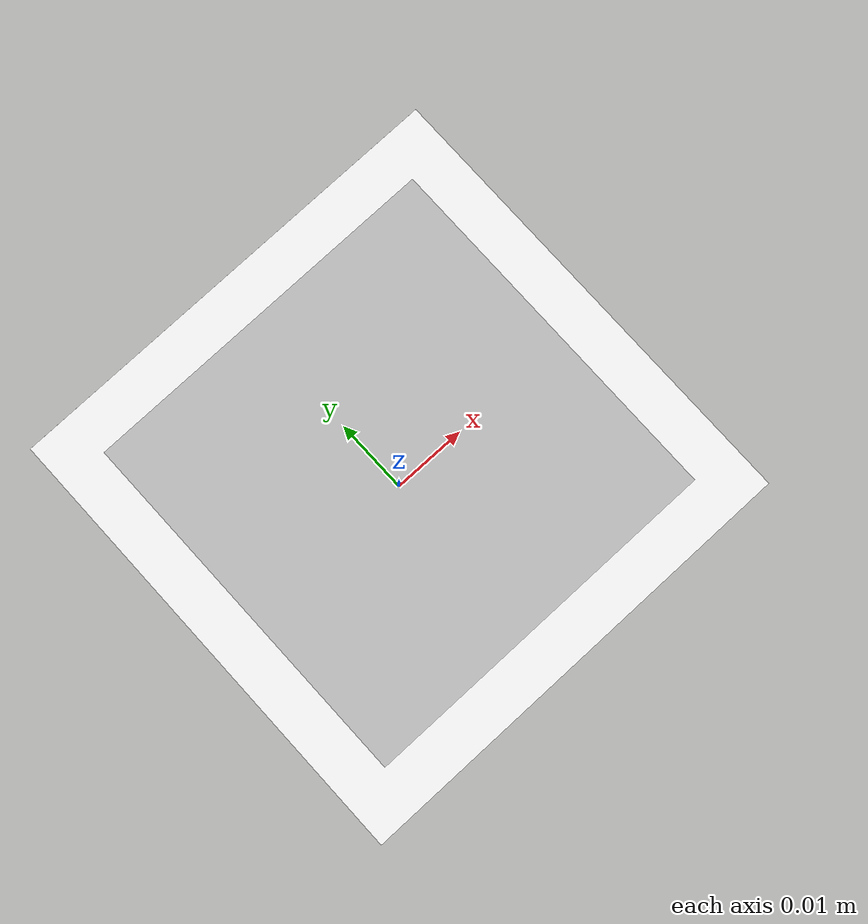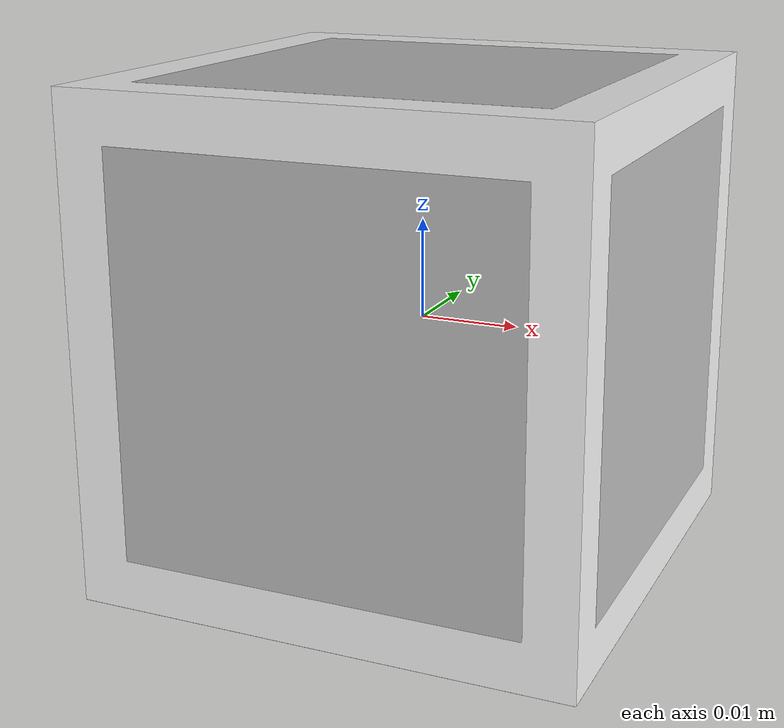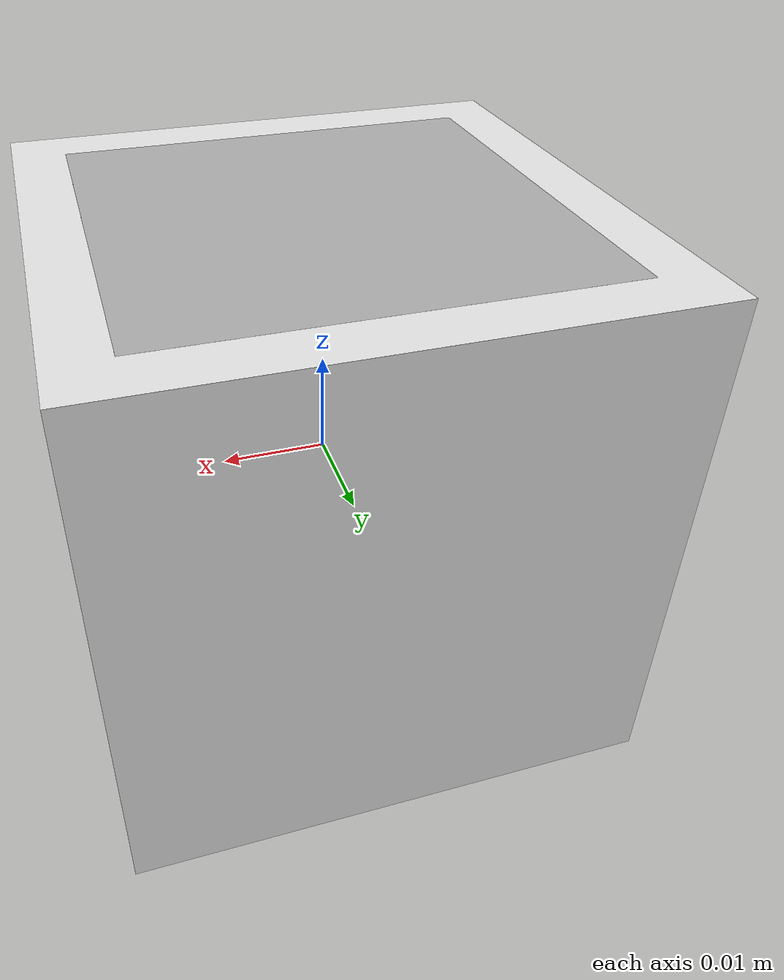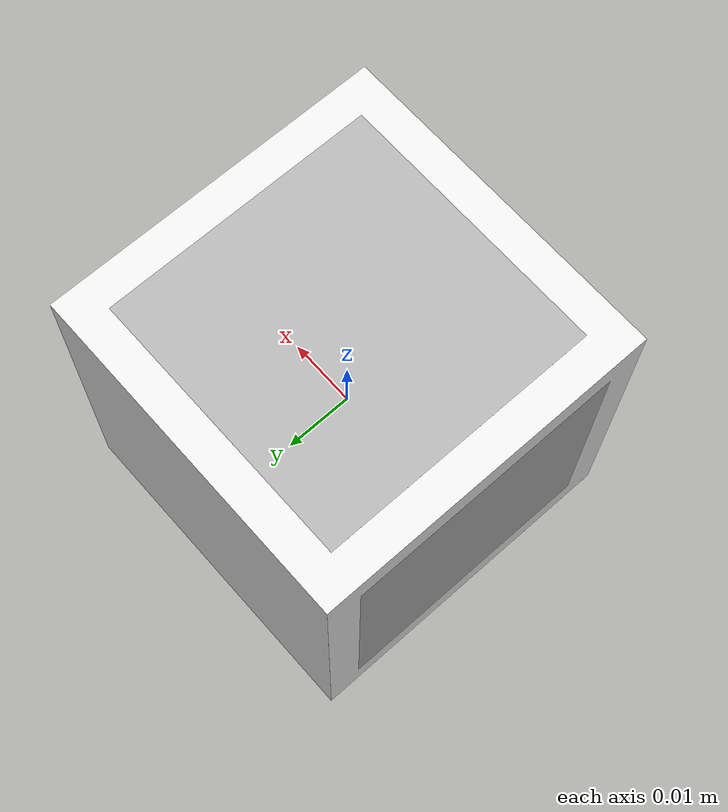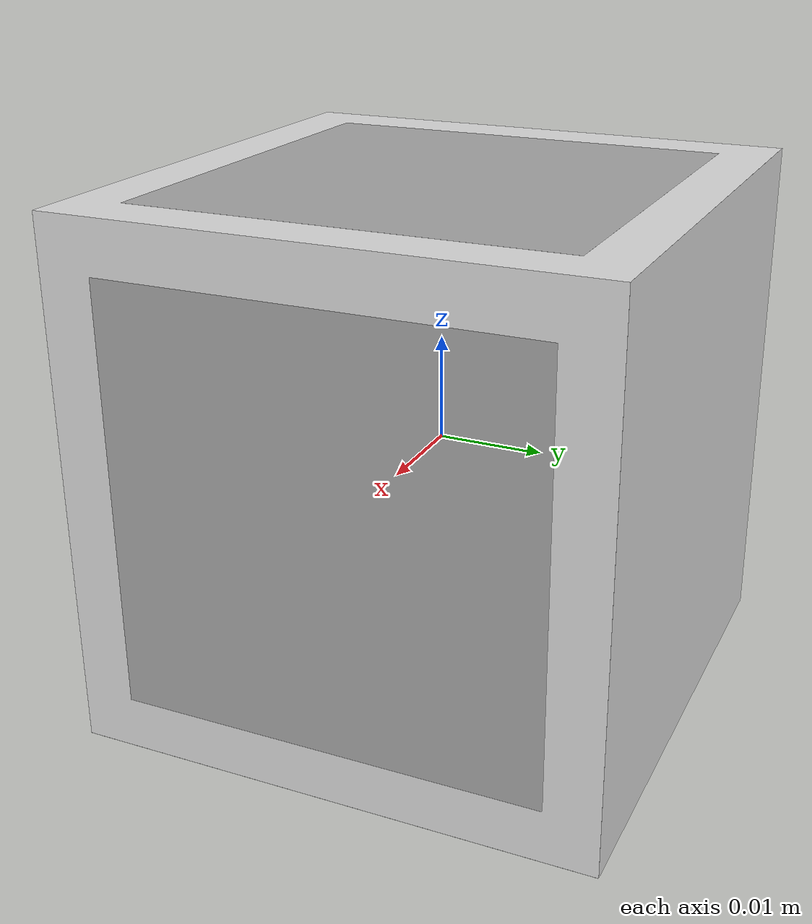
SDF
<?xml version="1.0"?>
<sdf version="1.6">
  <model name="cube4">
    <pose>0.0 0.0 0.0 0 0 0.0</pose>

    <link name="cube4_link">
      <inertial>
        <mass>0.05</mass>
        <inertia>
          <ixx>0.000020833</ixx>
          <ixy>0</ixy>
          <ixz>0</ixz>
          <iyy>0.000020833</iyy>
          <iyz>0</iyz>
          <izz>0.000020833</izz>
        </inertia>
      </inertial>

      <collision name="collision">
        <geometry>
          <box>
            <size>0.05 0.05 0.05</size>
          </box>
        </geometry>
      </collision>

      <visual name="body_visual">
        <geometry>
          <box>
            <size>0.05 0.05 0.05</size>
          </box>
        </geometry>
        <material>
          <ambient>0.95 0.95 0.95 1</ambient>
          <diffuse>0.95 0.95 0.95 1</diffuse>
        </material>
      </visual>

      <visual name="face_xp">
        <pose>0.02500001 0 0 0 0 0</pose>
        <geometry>
          <box>
            <size>0.000001 0.04 0.04</size>
          </box>
        </geometry>
        <material>
          <script>
            <uri>file:///volume/models/cube_model/materials/scripts</uri>
            <uri>file:///volume/models/cube_model/materials/textures</uri>
            <name>aruco_16</name>
          </script>
        </material>
      </visual>

      <visual name="face_xm">
        <pose>-0.02500001 0 0 0 0 0</pose>
        <geometry>
          <box>
            <size>0.00001 0.04 0.04</size>
          </box>
        </geometry>
        <material>
          <script>
            <uri>file:///volume/models/cube_model/materials/scripts</uri>
            <uri>file:///volume/models/cube_model/materials/textures</uri>
            <name>aruco_17</name>
          </script>
        </material>
      </visual>

      <visual name="face_yp">
        <pose>0 0.02500001 0 0 0 0</pose>
        <geometry>
          <box>
            <size>0.05 0.00001 0.05</size>
          </box>
        </geometry>
        <material>
          <script>
            <uri>file:///volume/models/cube_model/materials/scripts</uri>
            <uri>file:///volume/models/cube_model/materials/textures</uri>
            <name>aruco_18</name>
          </script>
        </material>
      </visual>

      <visual name="face_ym">
        <pose>0 -0.02500001 0 0 0 0</pose>
        <geometry>
          <box>
            <size>0.04 0.00001 0.04</size>
          </box>
        </geometry>
        <material>
          <script>
            <uri>file:///volume/models/cube_model/materials/scripts</uri>
            <uri>file:///volume/models/cube_model/materials/textures</uri>
            <name>aruco_19</name>
          </script>
        </material>
      </visual>

      <visual name="face_zp">
        <pose>0 0 0.02500001 0 0 0</pose>
        <geometry>
          <box>
            <size>0.04 0.04 0.00001</size>
          </box>
        </geometry>
        <material>
          <script>
            <uri>file:///volume/models/cube_model/materials/scripts</uri>
            <uri>file:///volume/models/cube_model/materials/textures</uri>
            <name>aruco_20</name>
          </script>
        </material>
      </visual>

      <visual name="face_zm">
        <pose>0 0 -0.02500001 0 0 0</pose>
        <geometry>
          <box>
            <size>0.05 0.05 0.00001</size>
          </box>
        </geometry>
        <material>
          <script>
            <uri>file:///volume/models/cube_model/materials/scripts</uri>
            <uri>file:///volume/models/cube_model/materials/textures</uri>
            <name>blank</name>
          </script>
        </material>
      </visual>

    </link>
  </model>
</sdf>
